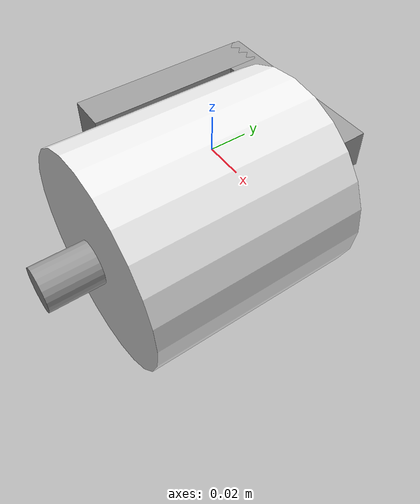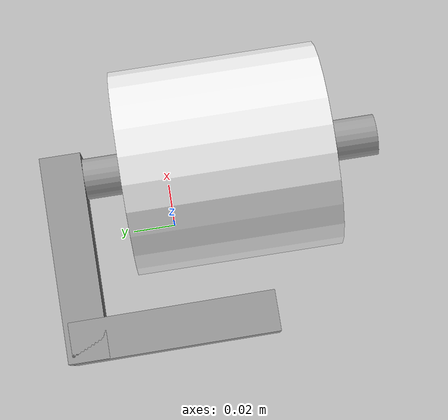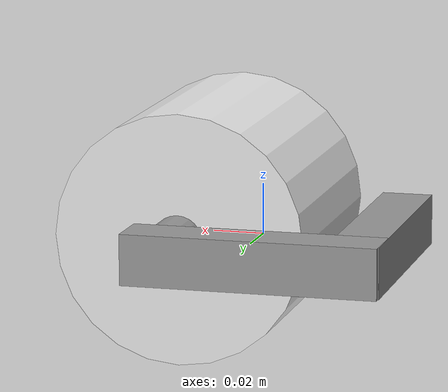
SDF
<?xml version='1.0'?>
<sdf version='1.7'>
  <model name='toilet_paper'>
    <link name='link_0'>
      <inertial>
        <mass>0.1</mass>
        <inertia>
          <ixx>0.00014583</ixx>
          <ixy>0</ixy>
          <ixz>0</ixz>
          <iyy>0.00014583</iyy>
          <iyz>0</iyz>
          <izz>0.000125</izz>
        </inertia>
        <pose>0 0 0 0 -0 0</pose>
      </inertial>
      <pose>0.028885 -0.028975 0 1.56769 -0 0</pose>
      <gravity>1</gravity>
      <self_collide>0</self_collide>
      <kinematic>0</kinematic>
      <enable_wind>0</enable_wind>
      <visual name='visual'>
        <pose>0 0 0 0 -0 0</pose>
        <geometry>
          <cylinder>
            <radius>0.05</radius>
            <length>0.1</length>
          </cylinder>
        </geometry>
        <material>
          <lighting>1</lighting>
          <script>
            <uri>file://media/materials/scripts/gazebo.material</uri>
            <name>Gazebo/White</name>
          </script>
          <shader type='pixel'>
            <normal_map>__default__</normal_map>
          </shader>
        </material>
        <transparency>0</transparency>
        <cast_shadows>1</cast_shadows>
      </visual>
      <collision name='collision'>
        <laser_retro>0</laser_retro>
        <max_contacts>10</max_contacts>
        <pose>0 0 0 0 -0 0</pose>
        <geometry>
          <cylinder>
            <radius>0.05</radius>
            <length>0.1</length>
          </cylinder>
        </geometry>
        <surface>
          <friction>
            <ode>
              <mu>1</mu>
              <mu2>1</mu2>
              <fdir1>0 0 0</fdir1>
              <slip1>0</slip1>
              <slip2>0</slip2>
            </ode>
            <torsional>
              <coefficient>1</coefficient>
              <patch_radius>0</patch_radius>
              <surface_radius>0</surface_radius>
              <use_patch_radius>1</use_patch_radius>
              <ode>
                <slip>0</slip>
              </ode>
            </torsional>
          </friction>
          <bounce>
            <restitution_coefficient>0</restitution_coefficient>
            <threshold>1e+06</threshold>
          </bounce>
          <contact>
            <collide_without_contact>0</collide_without_contact>
            <collide_without_contact_bitmask>1</collide_without_contact_bitmask>
            <collide_bitmask>1</collide_bitmask>
            <ode>
              <soft_cfm>0</soft_cfm>
              <soft_erp>0.2</soft_erp>
              <kp>1e+13</kp>
              <kd>1</kd>
              <max_vel>0.01</max_vel>
              <min_depth>0</min_depth>
            </ode>
            <bullet>
              <split_impulse>1</split_impulse>
              <split_impulse_penetration_threshold>-0.01</split_impulse_penetration_threshold>
              <soft_cfm>0</soft_cfm>
              <soft_erp>0.2</soft_erp>
              <kp>1e+13</kp>
              <kd>1</kd>
            </bullet>
          </contact>
        </surface>
      </collision>
    </link>
    <link name='link_1'>
      <inertial>
        <mass>0.1</mass>
        <inertia>
          <ixx>0.00019</ixx>
          <ixy>0</ixy>
          <ixz>0</ixz>
          <iyy>0.00019</iyy>
          <iyz>0</iyz>
          <izz>5e-06</izz>
        </inertia>
        <pose>0 0 0 0 -0 0</pose>
      </inertial>
      <pose>0.029198 -0.028543 0 1.56769 -0 0</pose>
      <gravity>1</gravity>
      <self_collide>0</self_collide>
      <kinematic>0</kinematic>
      <enable_wind>0</enable_wind>
      <visual name='visual'>
        <pose>0 0 0 0 -0 0</pose>
        <geometry>
          <cylinder>
            <radius>0.01</radius>
            <length>0.15</length>
          </cylinder>
        </geometry>
        <material>
          <lighting>1</lighting>
          <script>
            <uri>file://media/materials/scripts/gazebo.material</uri>
            <name>Gazebo/Grey</name>
          </script>
          <shader type='pixel'>
            <normal_map>__default__</normal_map>
          </shader>
        </material>
        <transparency>0</transparency>
        <cast_shadows>1</cast_shadows>
      </visual>
      <collision name='collision'>
        <laser_retro>0</laser_retro>
        <max_contacts>10</max_contacts>
        <pose>0 0 0 0 -0 0</pose>
        <geometry>
          <cylinder>
            <radius>0.01</radius>
            <length>0.15</length>
          </cylinder>
        </geometry>
        <surface>
          <friction>
            <ode>
              <mu>1</mu>
              <mu2>1</mu2>
              <fdir1>0 0 0</fdir1>
              <slip1>0</slip1>
              <slip2>0</slip2>
            </ode>
            <torsional>
              <coefficient>1</coefficient>
              <patch_radius>0</patch_radius>
              <surface_radius>0</surface_radius>
              <use_patch_radius>1</use_patch_radius>
              <ode>
                <slip>0</slip>
              </ode>
            </torsional>
          </friction>
          <bounce>
            <restitution_coefficient>0</restitution_coefficient>
            <threshold>1e+06</threshold>
          </bounce>
          <contact>
            <collide_without_contact>0</collide_without_contact>
            <collide_without_contact_bitmask>1</collide_without_contact_bitmask>
            <collide_bitmask>1</collide_bitmask>
            <ode>
              <soft_cfm>0</soft_cfm>
              <soft_erp>0.2</soft_erp>
              <kp>1e+13</kp>
              <kd>1</kd>
              <max_vel>0.01</max_vel>
              <min_depth>0</min_depth>
            </ode>
            <bullet>
              <split_impulse>1</split_impulse>
              <split_impulse_penetration_threshold>-0.01</split_impulse_penetration_threshold>
              <soft_cfm>0</soft_cfm>
              <soft_erp>0.2</soft_erp>
              <kp>1e+13</kp>
              <kd>1</kd>
            </bullet>
          </contact>
        </surface>
      </collision>
    </link>
    <link name='link_2'>
      <inertial>
        <mass>0.1</mass>
        <inertia>
          <ixx>6.67e-06</ixx>
          <ixy>0</ixy>
          <ixz>0</ixz>
          <iyy>8.667e-05</iyy>
          <iyz>0</iyz>
          <izz>8.667e-05</izz>
        </inertia>
        <pose>0 0 0 0 -0 0</pose>
      </inertial>
      <pose>-0.009032 0.049947 0 0 -0 0</pose>
      <gravity>1</gravity>
      <self_collide>0</self_collide>
      <kinematic>0</kinematic>
      <enable_wind>0</enable_wind>
      <visual name='visual'>
        <pose>0 0 0 0 -0 0</pose>
        <geometry>
          <box>
            <size>0.1 0.02 0.02</size>
          </box>
        </geometry>
        <material>
          <lighting>1</lighting>
          <script>
            <uri>file://media/materials/scripts/gazebo.material</uri>
            <name>Gazebo/Grey</name>
          </script>
          <shader type='pixel'>
            <normal_map>__default__</normal_map>
          </shader>
        </material>
        <transparency>0</transparency>
        <cast_shadows>1</cast_shadows>
      </visual>
      <collision name='collision'>
        <laser_retro>0</laser_retro>
        <max_contacts>10</max_contacts>
        <pose>0 0 0 0 -0 0</pose>
        <geometry>
          <box>
            <size>0.1 0.02 0.02</size>
          </box>
        </geometry>
        <surface>
          <friction>
            <ode>
              <mu>1</mu>
              <mu2>1</mu2>
              <fdir1>0 0 0</fdir1>
              <slip1>0</slip1>
              <slip2>0</slip2>
            </ode>
            <torsional>
              <coefficient>1</coefficient>
              <patch_radius>0</patch_radius>
              <surface_radius>0</surface_radius>
              <use_patch_radius>1</use_patch_radius>
              <ode>
                <slip>0</slip>
              </ode>
            </torsional>
          </friction>
          <bounce>
            <restitution_coefficient>0</restitution_coefficient>
            <threshold>1e+06</threshold>
          </bounce>
          <contact>
            <collide_without_contact>0</collide_without_contact>
            <collide_without_contact_bitmask>1</collide_without_contact_bitmask>
            <collide_bitmask>1</collide_bitmask>
            <ode>
              <soft_cfm>0</soft_cfm>
              <soft_erp>0.2</soft_erp>
              <kp>1e+13</kp>
              <kd>1</kd>
              <max_vel>0.01</max_vel>
              <min_depth>0</min_depth>
            </ode>
            <bullet>
              <split_impulse>1</split_impulse>
              <split_impulse_penetration_threshold>-0.01</split_impulse_penetration_threshold>
              <soft_cfm>0</soft_cfm>
              <soft_erp>0.2</soft_erp>
              <kp>1e+13</kp>
              <kd>1</kd>
            </bullet>
          </contact>
        </surface>
      </collision>
    </link>
    <link name='link_3'>
      <inertial>
        <mass>0.1</mass>
        <inertia>
          <ixx>6.67e-06</ixx>
          <ixy>0</ixy>
          <ixz>0</ixz>
          <iyy>8.667e-05</iyy>
          <iyz>0</iyz>
          <izz>8.667e-05</izz>
        </inertia>
        <pose>0 0 0 0 -0 0</pose>
      </inertial>
      <pose>-0.04905 0.007573 0 0 -0 1.57759</pose>
      <gravity>1</gravity>
      <self_collide>0</self_collide>
      <kinematic>0</kinematic>
      <enable_wind>0</enable_wind>
      <visual name='visual'>
        <pose>0 0 0 0 -0 0</pose>
        <geometry>
          <box>
            <size>0.1 0.02 0.02</size>
          </box>
        </geometry>
        <material>
          <lighting>1</lighting>
          <script>
            <uri>file://media/materials/scripts/gazebo.material</uri>
            <name>Gazebo/Grey</name>
          </script>
          <shader type='pixel'>
            <normal_map>__default__</normal_map>
          </shader>
        </material>
        <transparency>0</transparency>
        <cast_shadows>1</cast_shadows>
      </visual>
      <collision name='collision'>
        <laser_retro>0</laser_retro>
        <max_contacts>10</max_contacts>
        <pose>0 0 0 0 -0 0</pose>
        <geometry>
          <box>
            <size>0.1 0.02 0.02</size>
          </box>
        </geometry>
        <surface>
          <friction>
            <ode>
              <mu>1</mu>
              <mu2>1</mu2>
              <fdir1>0 0 0</fdir1>
              <slip1>0</slip1>
              <slip2>0</slip2>
            </ode>
            <torsional>
              <coefficient>1</coefficient>
              <patch_radius>0</patch_radius>
              <surface_radius>0</surface_radius>
              <use_patch_radius>1</use_patch_radius>
              <ode>
                <slip>0</slip>
              </ode>
            </torsional>
          </friction>
          <bounce>
            <restitution_coefficient>0</restitution_coefficient>
            <threshold>1e+06</threshold>
          </bounce>
          <contact>
            <collide_without_contact>0</collide_without_contact>
            <collide_without_contact_bitmask>1</collide_without_contact_bitmask>
            <collide_bitmask>1</collide_bitmask>
            <ode>
              <soft_cfm>0</soft_cfm>
              <soft_erp>0.2</soft_erp>
              <kp>1e+13</kp>
              <kd>1</kd>
              <max_vel>0.01</max_vel>
              <min_depth>0</min_depth>
            </ode>
            <bullet>
              <split_impulse>1</split_impulse>
              <split_impulse_penetration_threshold>-0.01</split_impulse_penetration_threshold>
              <soft_cfm>0</soft_cfm>
              <soft_erp>0.2</soft_erp>
              <kp>1e+13</kp>
              <kd>1</kd>
            </bullet>
          </contact>
        </surface>
      </collision>
    </link>
    <static>1</static>
    <allow_auto_disable>1</allow_auto_disable>
  </model>
</sdf>
